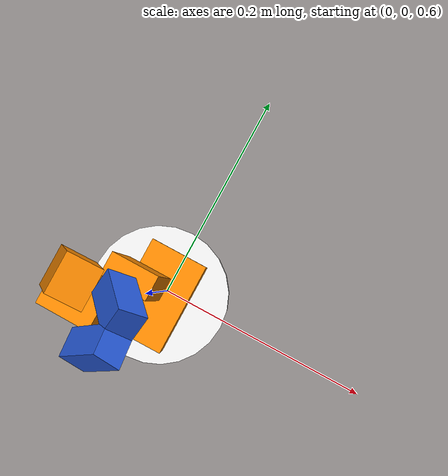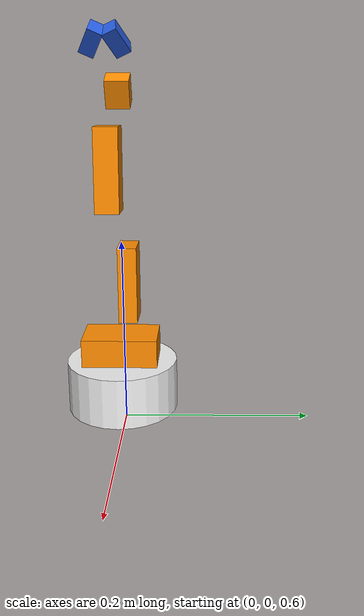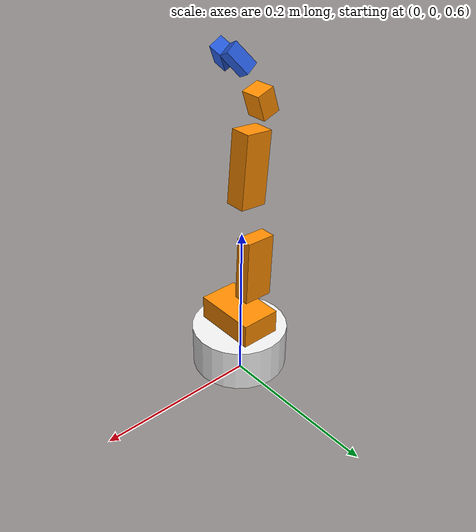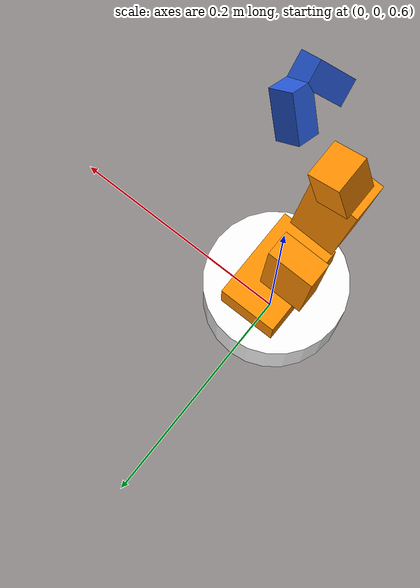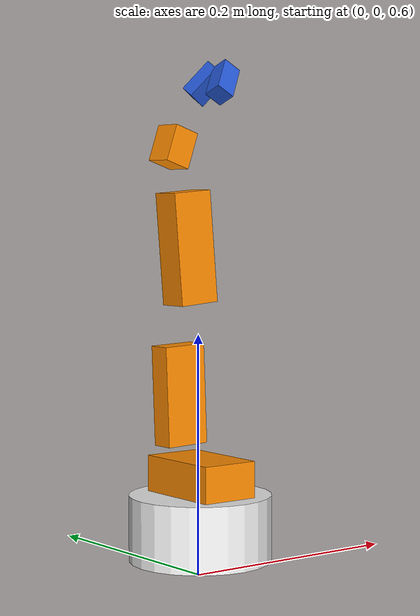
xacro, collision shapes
<?xml version="1.0"?>
<robot xmlns:xacro="http://www.ros.org/wiki/xacro" name="aria_arm">

  <!-- Study switches. Defaults preserve the original bring-up behaviour. -->
  <xacro:arg name="enable_attach" default="true"/>
  <xacro:arg name="enable_cameras" default="true"/>

  <!-- Include Gazebo-specific plugins and materials -->
  <xacro:include filename="$(find arm_description)/urdf/aria_arm.gazebo.xacro"/>

  <!-- ═══════════════════════════════════════════════════════════
       PROPERTIES & LIMITS
       ═══════════════════════════════════════════════════════════ -->
  <xacro:property name="arm_mesh_scale"     value="0.00098 0.00098 0.00098"/>
  <xacro:property name="gripper_mesh_scale" value="0.00098 0.00098 0.00098"/>

  <!-- Joint Angle Limits (radians) -->
  <xacro:property name="waist_lower"        value="-3.14159"/> <!-- -180 deg -->
  <xacro:property name="waist_upper"        value="3.14159"/>  <!-- +180 deg -->
  <xacro:property name="shoulder_lower"     value="-1.5708"/> <!-- -90 deg -->
  <xacro:property name="shoulder_upper"     value="1.5708"/>  <!-- +90 deg -->
  <xacro:property name="elbow_lower"        value="-1.5708"/> <!-- -90 deg -->
  <xacro:property name="elbow_upper"        value="1.5708"/>  <!-- +90 deg -->
  <xacro:property name="wrist_pitch_lower"  value="-1.5708"/> <!-- -90 deg -->
  <xacro:property name="wrist_pitch_upper"  value="1.5708"/>  <!-- +90 deg -->
  <xacro:property name="gripper_lower"      value="0.0"/>
  <xacro:property name="gripper_upper"      value="1.047"/>   <!-- 60 deg open -->

  <!-- Actuator Specifications (MG995 / MM995 & SG90 Servos) -->
  <xacro:property name="mg995_effort"       value="25.0"/>
  <xacro:property name="mg995_velocity"     value="3.5"/>
  <xacro:property name="sg90_effort"        value="10.0"/>
  <xacro:property name="sg90_velocity"      value="6.0"/>
  <!-- Gripper actuator limit: the SG90 stall torque is ~0.18 N*m, not 10 N*m.
       The original 10 N*m limit produced 6 kN contact forces on a 40 mm cube. -->
  <xacro:property name="gripper_effort"     value="0.18"/>
  <xacro:property name="gripper_velocity"   value="6.0"/>

  <!-- ═══════════════════════════════════════════════════════════
       MATERIALS (for RViz visualization)
       ═══════════════════════════════════════════════════════════ -->
  <material name="white"><color rgba="0.95 0.95 0.95 1.0"/></material>
  <material name="orange"><color rgba="1.0 0.55 0.0 1.0"/></material>
  <material name="blue"><color rgba="0.15 0.35 0.85 1.0"/></material>
  <material name="dark_gray"><color rgba="0.25 0.25 0.25 1.0"/></material>

  <!-- ═══════════════════════════════════════════════════════════
       WORLD ANCHOR & FIXED TABLE ATTACHMENT
       ═══════════════════════════════════════════════════════════ -->
  <link name="world"/>

  <joint name="fixed_base" type="fixed">
    <parent link="world"/>
    <child link="base_link"/>
    <origin xyz="0.0 0.0 0.614" rpy="0 0 1.5708"/>
  </joint>

  <!-- ═══════════════════════════════════════════════════════════
       LINK 1: BASE — White cylindrical base housing
       ═══════════════════════════════════════════════════════════ -->
  <link name="base_link">
    <inertial>
      <origin xyz="0 0 0.025" rpy="0 0 0"/>
      <mass value="0.30"/>
      <inertia ixx="0.0002" ixy="0" ixz="0" iyy="0.0002" iyz="0" izz="0.0003"/>
    </inertial>
    <visual name="Base_Visual">
      <origin xyz="0 0 0" rpy="1.5708 0 0"/>
      <geometry>
        <mesh filename="package://arm_description/meshes/stl/Base.stl" scale="${arm_mesh_scale}"/>
      </geometry>
      <material name="white"/>
    </visual>
    <collision name="Base_Collision">
      <origin xyz="-0.0029 0.00016 0.027" rpy="0 0 0"/>
      <geometry>
        <cylinder radius="0.0592" length="0.05469"/>
      </geometry>
    </collision>
  </link>

  <!-- ═══════════════════════════════════════════════════════════
       JOINT 1: WAIST — MG995 / MM995 Servo
       ═══════════════════════════════════════════════════════════ -->
  <joint name="waist_joint" type="revolute">
    <origin xyz="-0.00345 -1e-05 0.04449" rpy="0 0 0"/>
    <parent link="base_link"/>
    <child link="waist_link"/>
    <axis xyz="0 0 1.0"/>
    <limit lower="${waist_lower}" upper="${waist_upper}" effort="${mg995_effort}" velocity="${mg995_velocity}"/>
    <dynamics damping="0.1" friction="0.02"/>
  </joint>

  <!-- ═══════════════════════════════════════════════════════════
       LINK 2: WAIST — Orange waist bracket
       ═══════════════════════════════════════════════════════════ -->
  <link name="waist_link">
    <inertial>
      <origin xyz="0 0 0.02" rpy="0 0 0"/>
      <mass value="0.20"/>
      <inertia ixx="0.00015" ixy="0" ixz="0" iyy="0.00015" iyz="0" izz="0.0002"/>
    </inertial>
    <visual name="Waist_Visual">
      <origin xyz="0 0 0" rpy="1.5708 0 0"/>
      <geometry>
        <mesh filename="package://arm_description/meshes/stl/Waist.stl" scale="${arm_mesh_scale}"/>
      </geometry>
      <material name="orange"/>
    </visual>
    <collision name="Waist_Collision">
      <origin xyz="0 0 0.02" rpy="0 0 0"/>
      <geometry>
        <box size="0.08 0.05 0.04"/>
      </geometry>
    </collision>
  </link>

  <!-- ═══════════════════════════════════════════════════════════
       JOINT 2: SHOULDER — MG995 / MM995 Servo
       ═══════════════════════════════════════════════════════════ -->
  <joint name="shoulder_joint" type="revolute">
    <origin xyz="0.00396 0.01369 0.03521" rpy="1.5708 0.03778 1.5708"/>
    <parent link="waist_link"/>
    <child link="upper_arm_link"/>
    <axis xyz="0 0 1.0"/>
    <limit lower="${shoulder_lower}" upper="${shoulder_upper}" effort="${mg995_effort}" velocity="${mg995_velocity}"/>
    <dynamics damping="0.1" friction="0.02"/>
  </joint>

  <!-- ═══════════════════════════════════════════════════════════
       LINK 3: UPPER ARM (Arm1) — Orange main link
       ═══════════════════════════════════════════════════════════ -->
  <link name="upper_arm_link">
    <inertial>
      <origin xyz="0 0.06 0" rpy="0 0 0"/>
      <mass value="0.18"/>
      <inertia ixx="0.0002" ixy="0" ixz="0" iyy="0.00004" iyz="0" izz="0.0002"/>
    </inertial>
    <visual name="Arm01_Visual">
      <origin xyz="0 0 0" rpy="0 0 0"/>
      <geometry>
        <mesh filename="package://arm_description/meshes/stl/Arm_01.stl" scale="${arm_mesh_scale}"/>
      </geometry>
      <material name="orange"/>
    </visual>
    <collision name="Arm01_Collision">
      <origin xyz="-0.00032 0.058 0.00439" rpy="0 0 0"/>
      <geometry>
        <box size="0.038 0.082 0.020"/>
      </geometry>
    </collision>
  </link>

  <!-- ═══════════════════════════════════════════════════════════
       JOINT 3: ELBOW — MG995 / MM995 Servo
       ═══════════════════════════════════════════════════════════ -->
  <joint name="elbow_joint" type="revolute">
    <origin xyz="-7e-05 0.11689 -0.00792" rpy="-0.0013 -3.14159 0.03778"/>
    <parent link="upper_arm_link"/>
    <child link="forearm_link"/>
    <axis xyz="0 0 1.0"/>
    <limit lower="${elbow_lower}" upper="${elbow_upper}" effort="${mg995_effort}" velocity="${mg995_velocity}"/>
    <dynamics damping="0.1" friction="0.02"/>
  </joint>

  <!-- ═══════════════════════════════════════════════════════════
       LINK 4: FOREARM (Arm2) — Orange forearm housing
       ═══════════════════════════════════════════════════════════ -->
  <link name="forearm_link">
    <inertial>
      <origin xyz="0 0.06 0" rpy="0 0 0"/>
      <mass value="0.15"/>
      <inertia ixx="0.00018" ixy="0" ixz="0" iyy="0.00003" iyz="0" izz="0.00018"/>
    </inertial>
    <visual name="Arm02_Visual">
      <origin xyz="0 0 0" rpy="-1.48894 -1.57209 1.57067"/>
      <geometry>
        <mesh filename="package://arm_description/meshes/stl/Arm_02.stl" scale="${arm_mesh_scale}"/>
      </geometry>
      <material name="orange"/>
    </visual>
    <collision name="Arm02_Collision">
      <origin xyz="-0.00436 0.062 0.00738" rpy="-1.48879 -1.57209 1.57066"/>
      <geometry>
        <box size="0.026 0.090 0.035"/>
      </geometry>
    </collision>
  </link>

  <!-- ═══════════════════════════════════════════════════════════
       JOINT 4: WRIST PITCH (wrist) — SG90 Micro Servo
       ═══════════════════════════════════════════════════════════ -->
  <joint name="wrist_pitch_joint" type="revolute">
    <origin xyz="-0.0088 0.12752 -0.00487" rpy="-0.01458 3.14159 0"/>
    <parent link="forearm_link"/>
    <child link="wrist_link"/>
    <axis xyz="0 0 1.0"/>
    <limit lower="${wrist_pitch_lower}" upper="${wrist_pitch_upper}" effort="${sg90_effort}" velocity="${sg90_velocity}"/>
    <dynamics damping="0.05" friction="0.01"/>
  </joint>

  <!-- ═══════════════════════════════════════════════════════════
       LINK 5: WRIST (Arm3) — Orange wrist link
       ═══════════════════════════════════════════════════════════ -->
  <link name="wrist_link">
    <inertial>
      <origin xyz="0 0.02 0" rpy="0 0 0"/>
      <mass value="0.10"/>
      <inertia ixx="0.00006" ixy="0" ixz="0" iyy="0.00006" iyz="0" izz="0.00006"/>
    </inertial>
    <visual name="Arm03_Visual">
      <origin xyz="0 0 0" rpy="1.2416 1.55752 1.5708"/>
      <geometry>
        <mesh filename="package://arm_description/meshes/stl/Arm_03.stl" scale="${arm_mesh_scale}"/>
      </geometry>
      <material name="orange"/>
    </visual>
    <collision name="Arm03_Collision">
      <origin xyz="-0.00062 0.015 0.00049" rpy="1.24161 1.55752 1.5708"/>
      <geometry>
        <box size="0.025 0.030 0.022"/>
      </geometry>
    </collision>
  </link>

  <!-- ═══════════════════════════════════════════════════════════
       SENSOR LINK: MPU6050 6-Axis IMU (Inside wrist link)
       ═══════════════════════════════════════════════════════════ -->
  <joint name="imu_joint" type="fixed">
    <origin xyz="0 0 0" rpy="0 0 0"/>
    <parent link="wrist_link"/>
    <child link="imu_link"/>
  </joint>

  <link name="imu_link">
    <inertial>
      <mass value="0.005"/>
      <inertia ixx="1e-7" ixy="0" ixz="0" iyy="1e-7" iyz="0" izz="1e-7"/>
    </inertial>
  </link>

  <!-- ═══════════════════════════════════════════════════════════
       SENSOR LINK: WRIST CAMERA (In-Hand Gripper Vision)
       ═══════════════════════════════════════════════════════════ -->
  <joint name="wrist_camera_joint" type="fixed">
    <parent link="wrist_link"/>
    <child link="wrist_camera_link"/>
    <origin xyz="0.025 0.050 -0.007" rpy="1.5708 0.0000 2.3358"/>
  </joint>

  <link name="wrist_camera_link">
    <inertial>
      <mass value="0.010"/>
      <inertia ixx="1e-7" ixy="0" ixz="0" iyy="1e-7" iyz="0" izz="1e-7"/>
    </inertial>
  </link>

  <!-- ═══════════════════════════════════════════════════════════
       JOINT 6: GRIPPER (gripper) — SG90 Micro Servo
       ═══════════════════════════════════════════════════════════ -->
  <joint name="gripper_joint" type="revolute">
    <origin xyz="-0.02735 0.03009 -0.02013" rpy="-1.27431 -1.58408 1.5708"/>
    <parent link="wrist_link"/>
    <child link="finger_left_1_link"/>
    <axis xyz="0 0 1.0"/>
    <limit lower="${gripper_lower}" upper="${gripper_upper}" effort="${gripper_effort}" velocity="${gripper_velocity}"/>
    <dynamics damping="0.02" friction="0.005"/>
  </joint>

  <link name="finger_left_1_link">
    <inertial>
      <origin xyz="0 0 0.03" rpy="0 0 0"/>
      <mass value="0.03"/>
      <inertia ixx="0.000015" ixy="0" ixz="0" iyy="0.000015" iyz="0" izz="0.000015"/>
    </inertial>
    <visual name="Gripper1_Visual">
      <origin xyz="0 0 0" rpy="-1.86728 0 0"/>
      <geometry>
        <mesh filename="package://arm_description/meshes/stl/Gripper1.002.stl" scale="1.0 1.0 1.0"/>
      </geometry>
      <material name="blue"/>
    </visual>
    <collision name="finger_left_1_link_collision">
      <origin xyz="0.0012 0.038 -0.003" rpy="-1.566536 0.309021 -2.005428"/>
      <geometry>
        <box size="0.030 0.016 0.016"/>
      </geometry>
    </collision>
  </link>

  <!-- ═══════════════════════════════════════════════════════════
       FINGER MIMIC JOINT — Right Finger (Blue, Mirrored)
       ═══════════════════════════════════════════════════════════ -->
  <joint name="finger_mimic_joint" type="revolute">
    <origin xyz="-0.02492 0.03048 0.00564" rpy="-1.25673 -1.55752 -1.57079"/>
    <parent link="wrist_link"/>
    <child link="finger_right_1_link"/>
    <axis xyz="0 0 1.0"/>
    <limit lower="${gripper_lower}" upper="${gripper_upper}" effort="${gripper_effort}" velocity="${gripper_velocity}"/>
    <mimic joint="gripper_joint" multiplier="1.0" offset="0.0"/>
    <dynamics damping="0.02" friction="0.005"/>
  </joint>

  <link name="finger_right_1_link">
    <inertial>
      <origin xyz="0 0 0.03" rpy="0 0 0"/>
      <mass value="0.03"/>
      <inertia ixx="0.000015" ixy="0" ixz="0" iyy="0.000015" iyz="0" izz="0.000015"/>
    </inertial>
    <visual name="Gripper2_Visual">
      <origin xyz="0 0 0" rpy="1.25673 0 0"/>
      <geometry>
        <mesh filename="package://arm_description/meshes/stl/Gripper2.stl" scale="1.0 1.0 1.0"/>
      </geometry>
      <material name="blue"/>
    </visual>
    <collision name="finger_right_1_link_collision">
      <origin xyz="-0.0012 -0.038 0.001" rpy="-1.566715 -0.291439 1.116399"/>
      <geometry>
        <box size="0.030 0.016 0.016"/>
      </geometry>
    </collision>
  </link>

  <!-- ═══════════════════════════════════════════════════════════
       ROS 2 CONTROL CONFIGURATION
       ═══════════════════════════════════════════════════════════ -->
  <ros2_control name="GazeboSystem" type="system">
    <hardware>
      <plugin>gazebo_ros2_control/GazeboSystem</plugin>
    </hardware>

    <joint name="waist_joint">
      <command_interface name="position">
        <param name="min">${waist_lower}</param>
        <param name="max">${waist_upper}</param>
      </command_interface>
      <state_interface name="position"/>
      <state_interface name="velocity"/>
      <state_interface name="effort"/>
    </joint>

    <joint name="shoulder_joint">
      <command_interface name="position">
        <param name="min">${shoulder_lower}</param>
        <param name="max">${shoulder_upper}</param>
      </command_interface>
      <state_interface name="position"/>
      <state_interface name="velocity"/>
      <state_interface name="effort"/>
    </joint>

    <joint name="elbow_joint">
      <command_interface name="position">
        <param name="min">${elbow_lower}</param>
        <param name="max">${elbow_upper}</param>
      </command_interface>
      <state_interface name="position"/>
      <state_interface name="velocity"/>
      <state_interface name="effort"/>
    </joint>

    <joint name="wrist_pitch_joint">
      <command_interface name="position">
        <param name="min">${wrist_pitch_lower}</param>
        <param name="max">${wrist_pitch_upper}</param>
      </command_interface>
      <state_interface name="position"/>
      <state_interface name="velocity"/>
      <state_interface name="effort"/>
    </joint>

    <joint name="gripper_joint">
      <command_interface name="position">
        <param name="min">${gripper_lower}</param>
        <param name="max">${gripper_upper}</param>
      </command_interface>
      <state_interface name="position"/>
      <state_interface name="velocity"/>
      <state_interface name="effort"/>
    </joint>

    <joint name="finger_mimic_joint">
      <param name="mimic">gripper_joint</param>
      <param name="multiplier">1</param>
      <command_interface name="position"/>
      <state_interface name="position"/>
      <state_interface name="velocity"/>
      <state_interface name="effort"/>
    </joint>

  </ros2_control>

  <gazebo reference="finger_left_1_link">
    <mu1>3.0</mu1>
    <mu2>3.0</mu2>
    <kp>5000.0</kp>
    <kd>50.0</kd>
    <minDepth>0.002</minDepth>
    <maxVel>0.005</maxVel>
  </gazebo>

  <gazebo reference="finger_right_1_link">
    <mu1>3.0</mu1>
    <mu2>3.0</mu2>
    <kp>5000.0</kp>
    <kd>50.0</kd>
    <minDepth>0.002</minDepth>
    <maxVel>0.005</maxVel>
  </gazebo>

</robot>
